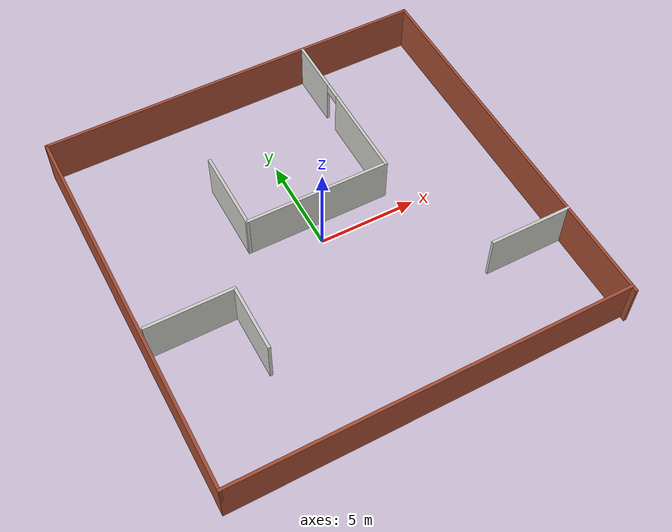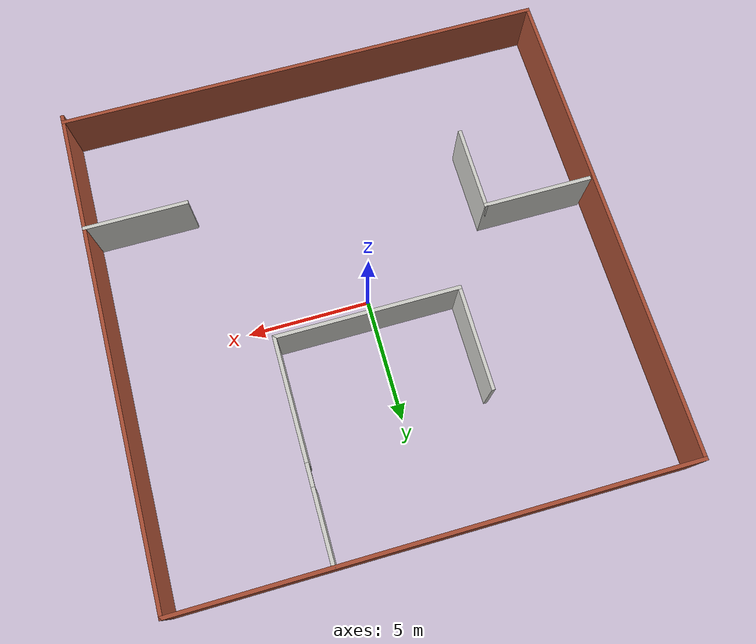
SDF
<sdf version="1.4">
 <world name="default">
  <scene>
   <ambient>0.68 0.68 0.68 1.0</ambient>
   <shadows>false</shadows>
   <sky><clouds><speed>12</speed></clouds></sky>
  </scene>
  <physics type="ode">
   <max_step_size>0.001</max_step_size>
   <real_time_factor>1</real_time_factor>
   <real_time_update_rate>1000</real_time_update_rate>
   <gravity>0 0 -9.8</gravity>
  </physics>
  <include><uri>model://sample</uri></include>
 </world>
</sdf>

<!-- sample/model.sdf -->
<sdf version='1.6'>
  <model name='sample'>
    <pose frame=''>0.079841 -0.321289 0 0 -0 0</pose>
    <link name='Wall_11'>
      <pose frame=''>3.91222 5.6965 0 0 -0 -1.5708</pose>
      <visual name='Wall_11_Visual_0'>
        <pose frame=''>-2.93067 0 1.25 0 -0 0</pose>
        <geometry>
          <box>
            <size>2.88865 0.15 2.5</size>
          </box>
        </geometry>
        <material>
          <script>
            <uri>file://media/materials/scripts/gazebo.material</uri>
            <name>Gazebo/CeilingTiled</name>
          </script>
          <ambient>1 1 1 1</ambient>
        </material>
        <meta>
          <layer>0</layer>
        </meta>
      </visual>
      <collision name='Wall_11_Collision_0'>
        <geometry>
          <box>
            <size>2.88865 0.15 2.5</size>
          </box>
        </geometry>
        <pose frame=''>-2.93067 0 1.25 0 -0 0</pose>
      </collision>
      <visual name='Wall_11_Visual_1'>
        <pose frame=''>1.89433 0 1.25 0 -0 0</pose>
        <geometry>
          <box>
            <size>4.96135 0.15 2.5</size>
          </box>
        </geometry>
        <material>
          <script>
            <uri>file://media/materials/scripts/gazebo.material</uri>
            <name>Gazebo/CeilingTiled</name>
          </script>
          <ambient>1 1 1 1</ambient>
        </material>
        <meta>
          <layer>0</layer>
        </meta>
      </visual>
      <collision name='Wall_11_Collision_1'>
        <geometry>
          <box>
            <size>4.96135 0.15 2.5</size>
          </box>
        </geometry>
        <pose frame=''>1.89433 0 1.25 0 -0 0</pose>
      </collision>
      <visual name='Wall_11_Visual_2'>
        <pose frame=''>-1.03635 0 2.25 0 -0 0</pose>
        <geometry>
          <box>
            <size>0.9 0.15 0.5</size>
          </box>
        </geometry>
        <material>
          <script>
            <uri>file://media/materials/scripts/gazebo.material</uri>
            <name>Gazebo/CeilingTiled</name>
          </script>
          <ambient>1 1 1 1</ambient>
        </material>
        <meta>
          <layer>0</layer>
        </meta>
      </visual>
      <collision name='Wall_11_Collision_2'>
        <geometry>
          <box>
            <size>0.9 0.15 0.5</size>
          </box>
        </geometry>
        <pose frame=''>-1.03635 0 2.25 0 -0 0</pose>
      </collision>
    </link>
    <link name='Wall_12'>
      <collision name='Wall_12_Collision'>
        <geometry>
          <box>
            <size>7.5 0.15 2.5</size>
          </box>
        </geometry>
        <pose frame=''>0 0 1.25 0 -0 0</pose>
      </collision>
      <visual name='Wall_12_Visual'>
        <pose frame=''>0 0 1.25 0 -0 0</pose>
        <geometry>
          <box>
            <size>7.5 0.15 2.5</size>
          </box>
        </geometry>
        <material>
          <script>
            <uri>file://media/materials/scripts/gazebo.material</uri>
            <name>Gazebo/CeilingTiled</name>
          </script>
          <ambient>1 1 1 1</ambient>
        </material>
        <meta>
          <layer>0</layer>
        </meta>
      </visual>
      <pose frame=''>0.237223 1.3965 0 0 -0 3.14159</pose>
    </link>
    <link name='Wall_13'>
      <collision name='Wall_13_Collision'>
        <geometry>
          <box>
            <size>4.25 0.15 2.5</size>
          </box>
        </geometry>
        <pose frame=''>0 0 1.25 0 -0 0</pose>
      </collision>
      <visual name='Wall_13_Visual'>
        <pose frame=''>0 0 1.25 0 -0 0</pose>
        <geometry>
          <box>
            <size>4.25 0.15 2.5</size>
          </box>
        </geometry>
        <material>
          <script>
            <uri>file://media/materials/scripts/gazebo.material</uri>
            <name>Gazebo/CeilingTiled</name>
          </script>
          <ambient>1 1 1 1</ambient>
        </material>
        <meta>
          <layer>0</layer>
        </meta>
      </visual>
      <pose frame=''>-3.43778 3.4465 0 0 -0 1.5708</pose>
    </link>
    <link name='Wall_15'>
      <collision name='Wall_15_Collision'>
        <geometry>
          <box>
            <size>4.25 0.15 2.5</size>
          </box>
        </geometry>
        <pose frame=''>0 0 1.25 0 -0 0</pose>
      </collision>
      <visual name='Wall_15_Visual'>
        <pose frame=''>0 0 1.25 0 -0 0</pose>
        <geometry>
          <box>
            <size>4.25 0.15 2.5</size>
          </box>
        </geometry>
        <material>
          <script>
            <uri>file://media/materials/scripts/gazebo.material</uri>
            <name>Gazebo/CeilingTiled</name>
          </script>
          <ambient>1 1 1 1</ambient>
        </material>
        <meta>
          <layer>0</layer>
        </meta>
      </visual>
      <pose frame=''>7.99532 -4.9307 0 0 -0 0</pose>
    </link>
    <link name='Wall_18'>
      <collision name='Wall_18_Collision'>
        <geometry>
          <box>
            <size>4.5 0.15 2.5</size>
          </box>
        </geometry>
        <pose frame=''>0 0 1.25 0 -0 0</pose>
      </collision>
      <visual name='Wall_18_Visual'>
        <pose frame=''>0 0 1.25 0 -0 0</pose>
        <geometry>
          <box>
            <size>4.5 0.15 2.5</size>
          </box>
        </geometry>
        <material>
          <script>
            <uri>file://media/materials/scripts/gazebo.material</uri>
            <name>Gazebo/CeilingTiled</name>
          </script>
          <ambient>1 1 1 1</ambient>
        </material>
        <meta>
          <layer>0</layer>
        </meta>
      </visual>
      <pose frame=''>-7.66292 -1.61355 0 0 -0 0</pose>
    </link>
    <link name='Wall_19'>
      <collision name='Wall_19_Collision'>
        <geometry>
          <box>
            <size>3.5 0.15 2.5</size>
          </box>
        </geometry>
        <pose frame=''>0 0 1.25 0 -0 0</pose>
      </collision>
      <visual name='Wall_19_Visual'>
        <pose frame=''>0 0 1.25 0 -0 0</pose>
        <geometry>
          <box>
            <size>3.5 0.15 2.5</size>
          </box>
        </geometry>
        <material>
          <script>
            <uri>file://media/materials/scripts/gazebo.material</uri>
            <name>Gazebo/CeilingTiled</name>
          </script>
          <ambient>1 1 1 1</ambient>
        </material>
        <meta>
          <layer>0</layer>
        </meta>
      </visual>
      <pose frame=''>-5.48792 -3.28855 0 0 -0 -1.5708</pose>
    </link>
    <link name='Wall_5'>
      <collision name='Wall_5_Collision'>
        <geometry>
          <box>
            <size>20.25 0.15 2.5</size>
          </box>
        </geometry>
        <pose frame=''>0 0 1.25 0 -0 0</pose>
      </collision>
      <visual name='Wall_5_Visual'>
        <pose frame=''>0 0 1.25 0 -0 0</pose>
        <geometry>
          <box>
            <size>20.25 0.15 2.5</size>
          </box>
        </geometry>
        <material>
          <script>
            <uri>file://media/materials/scripts/gazebo.material</uri>
            <name>Gazebo/Bricks</name>
          </script>
          <ambient>1 1 1 1</ambient>
        </material>
        <meta>
          <layer>0</layer>
        </meta>
      </visual>
      <pose frame=''>10.05 0 0 0 -0 1.5708</pose>
    </link>
    <link name='Wall_6'>
      <collision name='Wall_6_Collision'>
        <geometry>
          <box>
            <size>20.25 0.15 2.5</size>
          </box>
        </geometry>
        <pose frame=''>0 0 1.25 0 -0 0</pose>
      </collision>
      <visual name='Wall_6_Visual'>
        <pose frame=''>0 0 1.25 0 -0 0</pose>
        <geometry>
          <box>
            <size>20.25 0.15 2.5</size>
          </box>
        </geometry>
        <material>
          <script>
            <uri>file://media/materials/scripts/gazebo.material</uri>
            <name>Gazebo/Bricks</name>
          </script>
          <ambient>1 1 1 1</ambient>
        </material>
        <meta>
          <layer>0</layer>
        </meta>
      </visual>
      <pose frame=''>0 10.05 0 0 -0 3.14159</pose>
    </link>
    <link name='Wall_7'>
      <collision name='Wall_7_Collision'>
        <geometry>
          <box>
            <size>20 0.15 2.5</size>
          </box>
        </geometry>
        <pose frame=''>0 0 1.25 0 -0 0</pose>
      </collision>
      <visual name='Wall_7_Visual'>
        <pose frame=''>0 0 1.25 0 -0 0</pose>
        <geometry>
          <box>
            <size>20 0.15 2.5</size>
          </box>
        </geometry>
        <material>
          <script>
            <uri>file://media/materials/scripts/gazebo.material</uri>
            <name>Gazebo/Bricks</name>
          </script>
          <ambient>1 1 1 1</ambient>
        </material>
        <meta>
          <layer>0</layer>
        </meta>
      </visual>
      <pose frame=''>-10.05 0.125 0 0 -0 -1.5708</pose>
    </link>
    <link name='Wall_9'>
      <collision name='Wall_9_Collision'>
        <geometry>
          <box>
            <size>20.25 0.15 2.5</size>
          </box>
        </geometry>
        <pose frame=''>0 0 1.25 0 -0 0</pose>
      </collision>
      <visual name='Wall_9_Visual'>
        <pose frame=''>0 0 1.25 0 -0 0</pose>
        <geometry>
          <box>
            <size>20.25 0.15 2.5</size>
          </box>
        </geometry>
        <material>
          <script>
            <uri>file://media/materials/scripts/gazebo.material</uri>
            <name>Gazebo/Bricks</name>
          </script>
          <ambient>1 1 1 1</ambient>
        </material>
        <meta>
          <layer>0</layer>
        </meta>
      </visual>
      <pose frame=''>0 -9.8 0 0 -0 0</pose>
    </link>
    <static>1</static>
  </model>
</sdf>
